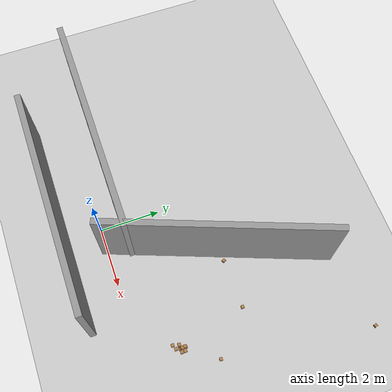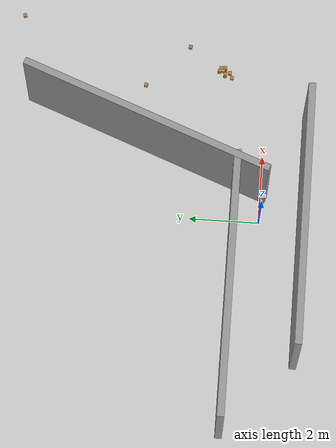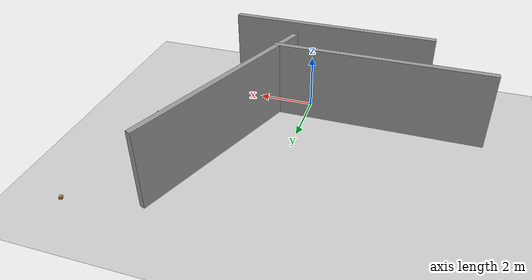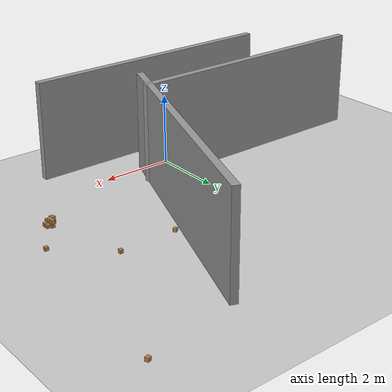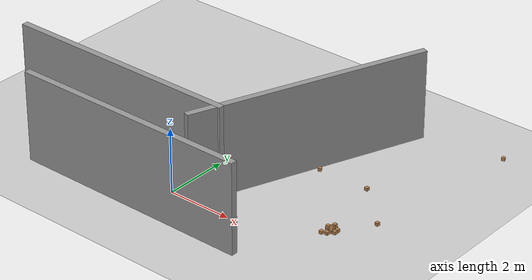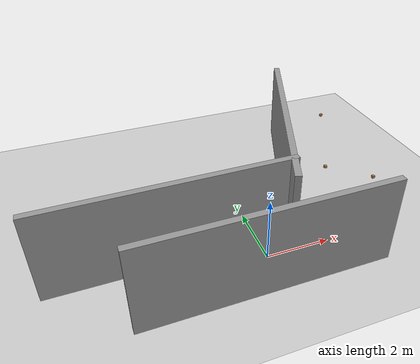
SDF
<sdf version="1.7">
 <world name="default">
  <light name="sun" type="directional">
   <pose>0 0 10 0 -0 0</pose>
   <diffuse>0.8 0.8 0.8 1</diffuse>
   <specular>0.2 0.2 0.2 1</specular>
   <attenuation>
    <range>1000</range>
    <constant>0.9</constant>
    <linear>0.01</linear>
    <quadratic>0.001</quadratic>
   </attenuation>
   <direction>-0.5 0.1 -0.9</direction>
   <spot><inner_angle>0</inner_angle><outer_angle>0</outer_angle><falloff>0</falloff></spot>
  </light>
  <model name="ground_plane">
   <static>1</static>
   <link name="link">
    <collision name="collision">
     <geometry><plane><normal>0 0 1</normal><size>100 100</size></plane></geometry>
     <surface><friction><ode><mu>100</mu><mu2>50</mu2></ode></friction></surface>
    </collision>
    <visual name="visual">
     <cast_shadows>0</cast_shadows>
     <geometry><plane><normal>0 0 1</normal><size>100 100</size></plane></geometry>
     <material>
      <script><uri>file://media/materials/scripts/gazebo.material</uri><name>Gazebo/Grey</name></script>
     </material>
    </visual>
   </link>
  </model>
  <gravity>0 0 -9.8</gravity>
  <magnetic_field>6e-06 2.3e-05 -4.2e-05</magnetic_field>
  <atmosphere type="adiabatic"/>
  <physics type="ode">
   <max_step_size>0.001</max_step_size>
   <real_time_factor>1</real_time_factor>
   <real_time_update_rate>1000</real_time_update_rate>
  </physics>
  <scene><ambient>0.4 0.4 0.4 1</ambient><background>0.7 0.7 0.7 1</background><shadows>1</shadows></scene>
  <audio><device>default</device></audio>
  <spherical_coordinates>
   <surface_model>EARTH_WGS84</surface_model>
   <latitude_deg>0</latitude_deg>
   <longitude_deg>0</longitude_deg>
   <elevation>0</elevation>
   <heading_deg>0</heading_deg>
  </spherical_coordinates>
  <model name="grey_wall">
   <static>1</static>
   <link name="link">
    <pose>0 0 1.4 0 -0 0</pose>
    <collision name="collision"><geometry><box><size>7.5 0.2 2.8</size></box></geometry></collision>
    <visual name="visual">
     <cast_shadows>0</cast_shadows>
     <geometry><box><size>7.5 0.2 2.8</size></box></geometry>
     <material>
      <script>
       <uri>model://grey_wall/materials/scripts</uri>
       <uri>model://grey_wall/materials/textures</uri>
       <name>vrc/grey_wall</name>
      </script>
     </material>
    </visual>
   </link>
   <pose>-0.453086 -1.18781 0 0 -0 0</pose>
  </model>
  <model name="grey_wall_0">
   <static>1</static>
   <link name="link">
    <pose>0 0 1.4 0 -0 0</pose>
    <collision name="collision"><geometry><box><size>7.5 0.2 2.8</size></box></geometry></collision>
    <visual name="visual">
     <cast_shadows>0</cast_shadows>
     <geometry><box><size>7.5 0.2 2.8</size></box></geometry>
     <material>
      <script>
       <uri>model://grey_wall/materials/scripts</uri>
       <uri>model://grey_wall/materials/textures</uri>
       <name>vrc/grey_wall</name>
      </script>
     </material>
    </visual>
   </link>
   <pose>-2.56414 0.751311 0 0 -0 0</pose>
  </model>
  <model name="grey_wall_1">
   <static>1</static>
   <link name="link">
    <pose>0 0 1.4 0 -0 0</pose>
    <collision name="collision"><geometry><box><size>7.5 0.2 2.8</size></box></geometry></collision>
    <visual name="visual">
     <cast_shadows>0</cast_shadows>
     <geometry><box><size>7.5 0.2 2.8</size></box></geometry>
     <material>
      <script>
       <uri>model://grey_wall/materials/scripts</uri>
       <uri>model://grey_wall/materials/textures</uri>
       <name>vrc/grey_wall</name>
      </script>
     </material>
    </visual>
   </link>
   <pose>2.05068 3.35336 0 0 -0 1.2046</pose>
  </model>
  <model name="wood_cube_10cm">
   <link name="link">
    <pose>0 0 0.05 0 -0 0</pose>
    <inertial>
     <mass>0.5167</mass>
     <inertia>
      <ixx>0.000861167</ixx>
      <ixy>0</ixy>
      <ixz>0</ixz>
      <iyy>0.000861167</iyy>
      <iyz>0</iyz>
      <izz>0.000861167</izz>
     </inertia>
    </inertial>
    <collision name="collision">
     <geometry><box><size>0.1 0.1 0.1</size></box></geometry>
     <surface>
      <contact>
       <poissons_ratio>0.347</poissons_ratio>
       <elastic_modulus>8.8e+09</elastic_modulus>
       <ode><kp>100000</kp><kd>100</kd><max_vel>100</max_vel><min_depth>0.001</min_depth></ode>
      </contact>
      <friction>
       <torsional>
        <coefficient>1</coefficient>
        <use_patch_radius>0</use_patch_radius>
        <surface_radius>0.01</surface_radius>
       </torsional>
      </friction>
     </surface>
    </collision>
    <visual name="visual">
     <geometry><box><size>0.1 0.1 0.1</size></box></geometry>
     <material>
      <script><uri>file://media/materials/scripts/gazebo.material</uri><name>Gazebo/Wood</name></script>
     </material>
    </visual>
   </link>
   <pose>4.57289 1.27836 0.100665 -0.258802 -3e-06 -1.5e-05</pose>
  </model>
  <model name="wood_cube_10cm_clone">
   <link name="link">
    <pose>0 0 0.05 0 -0 0</pose>
    <inertial>
     <mass>0.5167</mass>
     <inertia>
      <ixx>0.000861167</ixx>
      <ixy>0</ixy>
      <ixz>0</ixz>
      <iyy>0.000861167</iyy>
      <iyz>0</iyz>
      <izz>0.000861167</izz>
     </inertia>
    </inertial>
    <collision name="collision">
     <geometry><box><size>0.1 0.1 0.1</size></box></geometry>
     <surface>
      <contact>
       <poissons_ratio>0.347</poissons_ratio>
       <elastic_modulus>8.8e+09</elastic_modulus>
       <ode><kp>100000</kp><kd>100</kd><max_vel>100</max_vel><min_depth>0.001</min_depth></ode>
      </contact>
      <friction>
       <torsional>
        <coefficient>1</coefficient>
        <use_patch_radius>0</use_patch_radius>
        <surface_radius>0.01</surface_radius>
       </torsional>
      </friction>
     </surface>
    </collision>
    <visual name="visual">
     <geometry><box><size>0.1 0.1 0.1</size></box></geometry>
     <material>
      <script><uri>file://media/materials/scripts/gazebo.material</uri><name>Gazebo/Wood</name></script>
     </material>
    </visual>
   </link>
   <pose>4.57132 1.23871 -0.001025 -0.000239 2e-06 6e-06</pose>
  </model>
  <model name="wood_cube_10cm_clone_0">
   <link name="link">
    <pose>0 0 0.05 0 -0 0</pose>
    <inertial>
     <mass>0.5167</mass>
     <inertia>
      <ixx>0.000861167</ixx>
      <ixy>0</ixy>
      <ixz>0</ixz>
      <iyy>0.000861167</iyy>
      <iyz>0</iyz>
      <izz>0.000861167</izz>
     </inertia>
    </inertial>
    <collision name="collision">
     <geometry><box><size>0.1 0.1 0.1</size></box></geometry>
     <surface>
      <contact>
       <poissons_ratio>0.347</poissons_ratio>
       <elastic_modulus>8.8e+09</elastic_modulus>
       <ode><kp>100000</kp><kd>100</kd><max_vel>100</max_vel><min_depth>0.001</min_depth></ode>
      </contact>
      <friction>
       <torsional>
        <coefficient>1</coefficient>
        <use_patch_radius>0</use_patch_radius>
        <surface_radius>0.01</surface_radius>
       </torsional>
      </friction>
     </surface>
    </collision>
    <visual name="visual">
     <geometry><box><size>0.1 0.1 0.1</size></box></geometry>
     <material>
      <script><uri>file://media/materials/scripts/gazebo.material</uri><name>Gazebo/Wood</name></script>
     </material>
    </visual>
   </link>
   <pose>4.53901 1.10562 -0.001013 0 -0 0</pose>
  </model>
  <model name="wood_cube_10cm_clone_1">
   <link name="link">
    <pose>0 0 0.05 0 -0 0</pose>
    <inertial>
     <mass>0.5167</mass>
     <inertia>
      <ixx>0.000861167</ixx>
      <ixy>0</ixy>
      <ixz>0</ixz>
      <iyy>0.000861167</iyy>
      <iyz>0</iyz>
      <izz>0.000861167</izz>
     </inertia>
    </inertial>
    <collision name="collision">
     <geometry><box><size>0.1 0.1 0.1</size></box></geometry>
     <surface>
      <contact>
       <poissons_ratio>0.347</poissons_ratio>
       <elastic_modulus>8.8e+09</elastic_modulus>
       <ode><kp>100000</kp><kd>100</kd><max_vel>100</max_vel><min_depth>0.001</min_depth></ode>
      </contact>
      <friction>
       <torsional>
        <coefficient>1</coefficient>
        <use_patch_radius>0</use_patch_radius>
        <surface_radius>0.01</surface_radius>
       </torsional>
      </friction>
     </surface>
    </collision>
    <visual name="visual">
     <geometry><box><size>0.1 0.1 0.1</size></box></geometry>
     <material>
      <script><uri>file://media/materials/scripts/gazebo.material</uri><name>Gazebo/Wood</name></script>
     </material>
    </visual>
   </link>
   <pose>4.45876 1.24403 -0.001025 -1e-06 3e-06 0</pose>
  </model>
  <model name="wood_cube_10cm_clone_2">
   <link name="link">
    <pose>0 0 0.05 0 -0 0</pose>
    <inertial>
     <mass>0.5167</mass>
     <inertia>
      <ixx>0.000861167</ixx>
      <ixy>0</ixy>
      <ixz>0</ixz>
      <iyy>0.000861167</iyy>
      <iyz>0</iyz>
      <izz>0.000861167</izz>
     </inertia>
    </inertial>
    <collision name="collision">
     <geometry><box><size>0.1 0.1 0.1</size></box></geometry>
     <surface>
      <contact>
       <poissons_ratio>0.347</poissons_ratio>
       <elastic_modulus>8.8e+09</elastic_modulus>
       <ode><kp>100000</kp><kd>100</kd><max_vel>100</max_vel><min_depth>0.001</min_depth></ode>
      </contact>
      <friction>
       <torsional>
        <coefficient>1</coefficient>
        <use_patch_radius>0</use_patch_radius>
        <surface_radius>0.01</surface_radius>
       </torsional>
      </friction>
     </surface>
    </collision>
    <visual name="visual">
     <geometry><box><size>0.1 0.1 0.1</size></box></geometry>
     <material>
      <script><uri>file://media/materials/scripts/gazebo.material</uri><name>Gazebo/Wood</name></script>
     </material>
    </visual>
   </link>
   <pose>4.68596 1.25234 -0.001013 0 -0 0.00018</pose>
  </model>
  <model name="wood_cube_10cm_clone_3">
   <link name="link">
    <pose>0 0 0.05 0 -0 0</pose>
    <inertial>
     <mass>0.5167</mass>
     <inertia>
      <ixx>0.000861167</ixx>
      <ixy>0</ixy>
      <ixz>0</ixz>
      <iyy>0.000861167</iyy>
      <iyz>0</iyz>
      <izz>0.000861167</izz>
     </inertia>
    </inertial>
    <collision name="collision">
     <geometry><box><size>0.1 0.1 0.1</size></box></geometry>
     <surface>
      <contact>
       <poissons_ratio>0.347</poissons_ratio>
       <elastic_modulus>8.8e+09</elastic_modulus>
       <ode><kp>100000</kp><kd>100</kd><max_vel>100</max_vel><min_depth>0.001</min_depth></ode>
      </contact>
      <friction>
       <torsional>
        <coefficient>1</coefficient>
        <use_patch_radius>0</use_patch_radius>
        <surface_radius>0.01</surface_radius>
       </torsional>
      </friction>
     </surface>
    </collision>
    <visual name="visual">
     <geometry><box><size>0.1 0.1 0.1</size></box></geometry>
     <material>
      <script><uri>file://media/materials/scripts/gazebo.material</uri><name>Gazebo/Wood</name></script>
     </material>
    </visual>
   </link>
   <pose>4.57936 1.41548 -0.001025 6e-05 -7.7e-05 1.2e-05</pose>
  </model>
  <model name="wood_cube_10cm_clone_4">
   <link name="link">
    <pose>0 0 0.05 0 -0 0</pose>
    <inertial>
     <mass>0.5167</mass>
     <inertia>
      <ixx>0.000861167</ixx>
      <ixy>0</ixy>
      <ixz>0</ixz>
      <iyy>0.000861167</iyy>
      <iyz>0</iyz>
      <izz>0.000861167</izz>
     </inertia>
    </inertial>
    <collision name="collision">
     <geometry><box><size>0.1 0.1 0.1</size></box></geometry>
     <surface>
      <contact>
       <poissons_ratio>0.347</poissons_ratio>
       <elastic_modulus>8.8e+09</elastic_modulus>
       <ode><kp>100000</kp><kd>100</kd><max_vel>100</max_vel><min_depth>0.001</min_depth></ode>
      </contact>
      <friction>
       <torsional>
        <coefficient>1</coefficient>
        <use_patch_radius>0</use_patch_radius>
        <surface_radius>0.01</surface_radius>
       </torsional>
      </friction>
     </surface>
    </collision>
    <visual name="visual">
     <geometry><box><size>0.1 0.1 0.1</size></box></geometry>
     <material>
      <script><uri>file://media/materials/scripts/gazebo.material</uri><name>Gazebo/Wood</name></script>
     </material>
    </visual>
   </link>
   <pose>5.98751 7.27159 0.048987 -2.84047 -1.57079 3.14159</pose>
  </model>
  <model name="wood_cube_10cm_clone_5">
   <link name="link">
    <pose>0 0 0.05 0 -0 0</pose>
    <inertial>
     <mass>0.5167</mass>
     <inertia>
      <ixx>0.000861167</ixx>
      <ixy>0</ixy>
      <ixz>0</ixz>
      <iyy>0.000861167</iyy>
      <iyz>0</iyz>
      <izz>0.000861167</izz>
     </inertia>
    </inertial>
    <collision name="collision">
     <geometry><box><size>0.1 0.1 0.1</size></box></geometry>
     <surface>
      <contact>
       <poissons_ratio>0.347</poissons_ratio>
       <elastic_modulus>8.8e+09</elastic_modulus>
       <ode><kp>100000</kp><kd>100</kd><max_vel>100</max_vel><min_depth>0.001</min_depth></ode>
      </contact>
      <friction>
       <torsional>
        <coefficient>1</coefficient>
        <use_patch_radius>0</use_patch_radius>
        <surface_radius>0.01</surface_radius>
       </torsional>
      </friction>
     </surface>
    </collision>
    <visual name="visual">
     <geometry><box><size>0.1 0.1 0.1</size></box></geometry>
     <material>
      <script><uri>file://media/materials/scripts/gazebo.material</uri><name>Gazebo/Wood</name></script>
     </material>
    </visual>
   </link>
   <pose>3.94435 3.53054 0.048987 -0.076423 -1.57079 3.14159</pose>
  </model>
  <model name="wood_cube_10cm_clone_6">
   <link name="link">
    <pose>0 0 0.05 0 -0 0</pose>
    <inertial>
     <mass>0.5167</mass>
     <inertia>
      <ixx>0.000861167</ixx>
      <ixy>0</ixy>
      <ixz>0</ixz>
      <iyy>0.000861167</iyy>
      <iyz>0</iyz>
      <izz>0.000861167</izz>
     </inertia>
    </inertial>
    <collision name="collision">
     <geometry><box><size>0.1 0.1 0.1</size></box></geometry>
     <surface>
      <contact>
       <poissons_ratio>0.347</poissons_ratio>
       <elastic_modulus>8.8e+09</elastic_modulus>
       <ode><kp>100000</kp><kd>100</kd><max_vel>100</max_vel><min_depth>0.001</min_depth></ode>
      </contact>
      <friction>
       <torsional>
        <coefficient>1</coefficient>
        <use_patch_radius>0</use_patch_radius>
        <surface_radius>0.01</surface_radius>
       </torsional>
      </friction>
     </surface>
    </collision>
    <visual name="visual">
     <geometry><box><size>0.1 0.1 0.1</size></box></geometry>
     <material>
      <script><uri>file://media/materials/scripts/gazebo.material</uri><name>Gazebo/Wood</name></script>
     </material>
    </visual>
   </link>
   <pose>2.36446 3.50159 -0.001013 0 0 -1.06363</pose>
  </model>
  <model name="wood_cube_10cm_clone_7">
   <link name="link">
    <pose>0 0 0.05 0 -0 0</pose>
    <inertial>
     <mass>0.5167</mass>
     <inertia>
      <ixx>0.000861167</ixx>
      <ixy>0</ixy>
      <ixz>0</ixz>
      <iyy>0.000861167</iyy>
      <iyz>0</iyz>
      <izz>0.000861167</izz>
     </inertia>
    </inertial>
    <collision name="collision">
     <geometry><box><size>0.1 0.1 0.1</size></box></geometry>
     <surface>
      <contact>
       <poissons_ratio>0.347</poissons_ratio>
       <elastic_modulus>8.8e+09</elastic_modulus>
       <ode><kp>100000</kp><kd>100</kd><max_vel>100</max_vel><min_depth>0.001</min_depth></ode>
      </contact>
      <friction>
       <torsional>
        <coefficient>1</coefficient>
        <use_patch_radius>0</use_patch_radius>
        <surface_radius>0.01</surface_radius>
       </torsional>
      </friction>
     </surface>
    </collision>
    <visual name="visual">
     <geometry><box><size>0.1 0.1 0.1</size></box></geometry>
     <material>
      <script><uri>file://media/materials/scripts/gazebo.material</uri><name>Gazebo/Wood</name></script>
     </material>
    </visual>
   </link>
   <pose>5.27806 2.26526 0.048987 1.43417 -1.57079 3.14159</pose>
  </model>
  <model name="wood_cube_10cm_clone_8">
   <link name="link">
    <pose>0 0 0.05 0 -0 0</pose>
    <inertial>
     <mass>0.5167</mass>
     <inertia>
      <ixx>0.000861167</ixx>
      <ixy>0</ixy>
      <ixz>0</ixz>
      <iyy>0.000861167</iyy>
      <iyz>0</iyz>
      <izz>0.000861167</izz>
     </inertia>
    </inertial>
    <collision name="collision">
     <geometry><box><size>0.1 0.1 0.1</size></box></geometry>
     <surface>
      <contact>
       <poissons_ratio>0.347</poissons_ratio>
       <elastic_modulus>8.8e+09</elastic_modulus>
       <ode><kp>100000</kp><kd>100</kd><max_vel>100</max_vel><min_depth>0.001</min_depth></ode>
      </contact>
      <friction>
       <torsional>
        <coefficient>1</coefficient>
        <use_patch_radius>0</use_patch_radius>
        <surface_radius>0.01</surface_radius>
       </torsional>
      </friction>
     </surface>
    </collision>
    <visual name="visual">
     <geometry><box><size>0.1 0.1 0.1</size></box></geometry>
     <material>
      <script><uri>file://media/materials/scripts/gazebo.material</uri><name>Gazebo/Wood</name></script>
     </material>
    </visual>
   </link>
   <pose>4.39656 1.04493 -0.001013 0 -0 0</pose>
  </model>
  <model name="wood_cube_10cm_clone_9">
   <link name="link">
    <pose>0 0 0.05 0 -0 0</pose>
    <inertial>
     <mass>0.5167</mass>
     <inertia>
      <ixx>0.000861167</ixx>
      <ixy>0</ixy>
      <ixz>0</ixz>
      <iyy>0.000861167</iyy>
      <iyz>0</iyz>
      <izz>0.000861167</izz>
     </inertia>
    </inertial>
    <collision name="collision">
     <geometry><box><size>0.1 0.1 0.1</size></box></geometry>
     <surface>
      <contact>
       <poissons_ratio>0.347</poissons_ratio>
       <elastic_modulus>8.8e+09</elastic_modulus>
       <ode><kp>100000</kp><kd>100</kd><max_vel>100</max_vel><min_depth>0.001</min_depth></ode>
      </contact>
      <friction>
       <torsional>
        <coefficient>1</coefficient>
        <use_patch_radius>0</use_patch_radius>
        <surface_radius>0.01</surface_radius>
       </torsional>
      </friction>
     </surface>
    </collision>
    <visual name="visual">
     <geometry><box><size>0.1 0.1 0.1</size></box></geometry>
     <material>
      <script><uri>file://media/materials/scripts/gazebo.material</uri><name>Gazebo/Wood</name></script>
     </material>
    </visual>
   </link>
   <pose>4.45945 1.24422 0.097969 -1e-06 4e-06 0</pose>
  </model>
  <model name="wood_cube_10cm_clone_10">
   <link name="link">
    <pose>0 0 0.05 0 -0 0</pose>
    <inertial>
     <mass>0.5167</mass>
     <inertia>
      <ixx>0.000861167</ixx>
      <ixy>0</ixy>
      <ixz>0</ixz>
      <iyy>0.000861167</iyy>
      <iyz>0</iyz>
      <izz>0.000861167</izz>
     </inertia>
    </inertial>
    <collision name="collision">
     <geometry><box><size>0.1 0.1 0.1</size></box></geometry>
     <surface>
      <contact>
       <poissons_ratio>0.347</poissons_ratio>
       <elastic_modulus>8.8e+09</elastic_modulus>
       <ode><kp>100000</kp><kd>100</kd><max_vel>100</max_vel><min_depth>0.001</min_depth></ode>
      </contact>
      <friction>
       <torsional>
        <coefficient>1</coefficient>
        <use_patch_radius>0</use_patch_radius>
        <surface_radius>0.01</surface_radius>
       </torsional>
      </friction>
     </surface>
    </collision>
    <visual name="visual">
     <geometry><box><size>0.1 0.1 0.1</size></box></geometry>
     <material>
      <script><uri>file://media/materials/scripts/gazebo.material</uri><name>Gazebo/Wood</name></script>
     </material>
    </visual>
   </link>
   <pose>4.56298 1.40157 0.097966 7.2e-05 -9.2e-05 3.4e-05</pose>
  </model>
  <model name="wood_cube_10cm_clone_11">
   <link name="link">
    <pose>0 0 0.05 0 -0 0</pose>
    <inertial>
     <mass>0.5167</mass>
     <inertia>
      <ixx>0.000861167</ixx>
      <ixy>0</ixy>
      <ixz>0</ixz>
      <iyy>0.000861167</iyy>
      <iyz>0</iyz>
      <izz>0.000861167</izz>
     </inertia>
    </inertial>
    <collision name="collision">
     <geometry><box><size>0.1 0.1 0.1</size></box></geometry>
     <surface>
      <contact>
       <poissons_ratio>0.347</poissons_ratio>
       <elastic_modulus>8.8e+09</elastic_modulus>
       <ode><kp>100000</kp><kd>100</kd><max_vel>100</max_vel><min_depth>0.001</min_depth></ode>
      </contact>
      <friction>
       <torsional>
        <coefficient>1</coefficient>
        <use_patch_radius>0</use_patch_radius>
        <surface_radius>0.01</surface_radius>
       </torsional>
      </friction>
     </surface>
    </collision>
    <visual name="visual">
     <geometry><box><size>0.1 0.1 0.1</size></box></geometry>
     <material>
      <script><uri>file://media/materials/scripts/gazebo.material</uri><name>Gazebo/Wood</name></script>
     </material>
    </visual>
   </link>
   <pose>4.68262 1.31611 0.048987 -1.5708 -0 -0.004387</pose>
  </model>
 </world>
</sdf>
